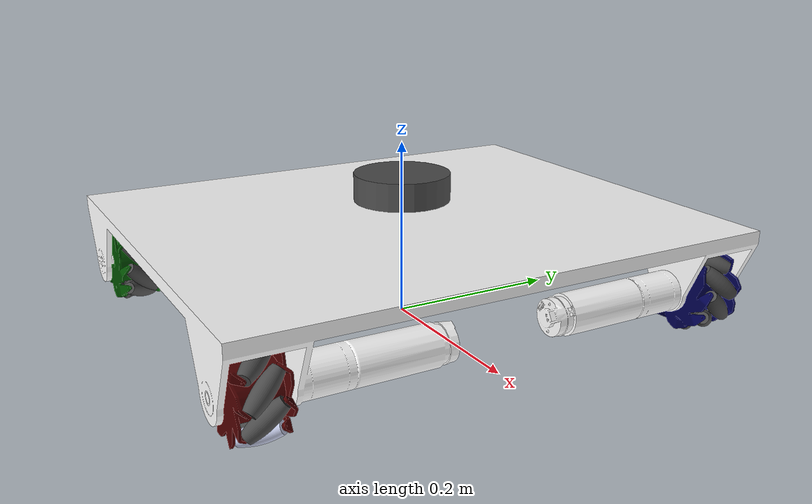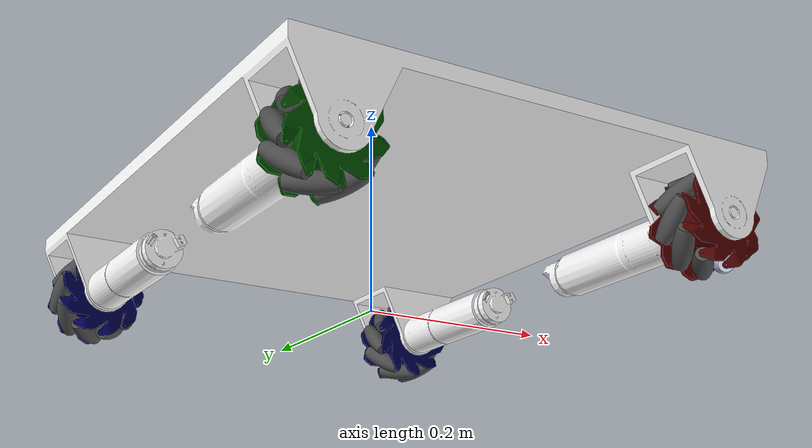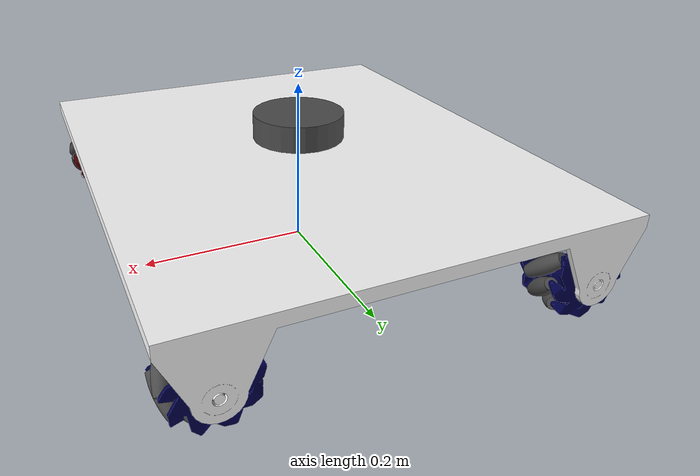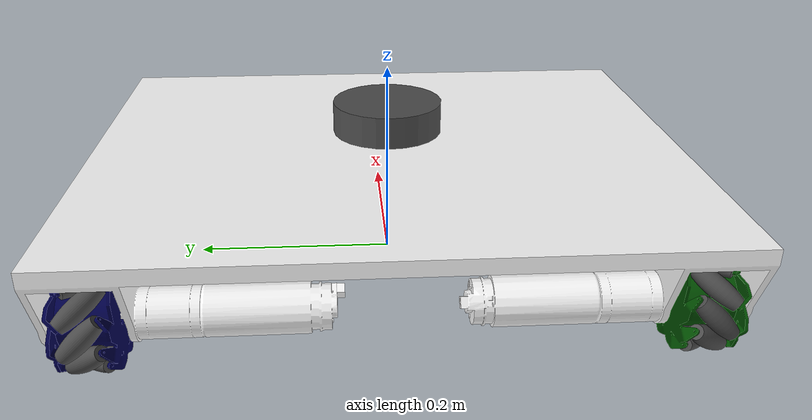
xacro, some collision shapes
<?xml version="1.0"?>
<robot xmlns:xacro="http://www.ros.org/wiki/xacro" name="mecanum">
	<xacro:include filename="$(find mecanum)/urdf/left_rim.urdf.xacro"/>
  <xacro:include filename="$(find mecanum)/urdf/right_rim.urdf.xacro"/>
	<material name="dark">
    	<color rgba="0.3 0.3 0.3 1.0"/>
  </material>

	<link name="base_footprint"/>
	<link name="base_link">
	<inertial>
      <origin
        xyz="3.8106E-17 5.5042E-17 -0.0052377"
        rpy="0 0 0" />
      <mass
        value="4.9166" />
      <inertia
        ixx="0.082486"
        ixy="5.0994E-06"
        ixz="1.5081E-20"
        iyy="0.078984"
        iyz="1.3553E-19"
        izz="0.16031" />
    </inertial>
	<visual>
		<geometry>
			<mesh filename="package://mecanum/meshes/base.STL" scale="1 1 1.2" />

		</geometry>
		<material name="base_material">
			<color rgba="1 1 1 1"/>
		</material>
	</visual>
	<collision>
		<geometry>
			<mesh filename="package://mecanum/meshes/base.STL" scale="1 1 1.2" />

		</geometry>
	</collision>
	</link>

	<joint name="base_joint" type="fixed">
		<parent link="base_footprint" />
		<child link="base_link" />
		<origin xyz="0 0 0.104" rpy="-1.57079632679 0 0"/>
	</joint>

    <!-- xyz="0.2 0.054 -0.195" -->
	<xacro:left_rim_macro
    name="one"
    color="0.3 0 0"
    xyz="0.2 0.056 -0.236"
    rpy="1.57 0 0"
  />
    <!-- xyz="-0.2 0.056 -0.28" -->
  <xacro:right_rim_macro
    name="two"
    color="0 0.3 0"
    xyz="-0.2 0.056 -0.34"
    rpy="-1.57 0 0"
  />
    <!-- xyz="-0.2 0.056 0.196" -->
  <xacro:left_rim_macro
    name="three"
    color="0 0 0.3"
    xyz="-0.2 0.056 0.236"
    rpy="-1.57 0 0"
  />
    <!-- xyz="0.2 0.056 0.28" -->
  <xacro:right_rim_macro
    name="four"
    color="0 0 0.3"
    xyz="0.2 0.056 0.34"
    rpy="1.57 0 0"
  />

	<gazebo reference="base_link">
  	<material>Gazebo/White</material>
  </gazebo>

	<gazebo reference="left_rim_one_link">
    <material>Gazebo/Red</material>
    <mu1>0.2</mu1>
  	<mu2>0.2</mu2>
    <kp>500000.0</kp>
    <kd>10.0</kd>
  </gazebo>

	<gazebo reference="right_rim_two_link">
    <material>Gazebo/Green</material>
    <mu1>0.2</mu1>
  	<mu2>0.2</mu2>
    <kp>500000.0</kp>
    <kd>10.0</kd>
  </gazebo>

	<gazebo reference="left_rim_three_link">
    <material>Gazebo/Blue</material>
    <mu1>0.2</mu1>
  	<mu2>0.2</mu2>
    <kp>500000.0</kp>
    <kd>10.0</kd>
  </gazebo>

  <gazebo reference="right_rim_four_link">
  	<material>Gazebo/Orange</material>
    <mu1>0.2</mu1>
  	<mu2>0.2</mu2>
    <kp>500000.0</kp>
    <kd>10.0</kd>
  </gazebo>

	<joint name="imu_joint" type="fixed">
  	<parent link="base_footprint"/>
  	<child link="imu_link"/>
  	<origin xyz="0 0 0.26325" rpy="0 0 0"/>
  </joint>

  <link name="imu_link"/>

  <joint name="scan_joint" type="fixed">
  	<parent link="base_footprint"/>
  	<child link="base_scan"/>
  	<origin xyz="0 0 0.15" rpy="0 0 0"/>
  </joint>

  <link name="base_scan">
    <visual>
      <origin xyz="0 0 0.0" rpy="0 0 0"/>
      <geometry>
        <mesh filename="package://mecanum/meshes/lds.stl" scale="0.001 0.001 0.001"/>
      </geometry>
      <material name="dark"/>
    </visual>
    <collision>
      <origin xyz="0 0 0" rpy="0 0 0"/>
      <geometry>
        <cylinder length="0.0315" radius="0.055"/>
      </geometry>
    </collision>
    <inertial>
      <mass value="0.114" />
      <origin xyz="0 0 0" />
      <inertia ixx="0.001" ixy="0.0" ixz="0.0"
               iyy="0.001" iyz="0.0"
               izz="0.001" />
    </inertial>
  </link>

  <!-- defining imu and laser in gazebo -->
  <gazebo reference="imu_link">
    <sensor type="imu" name="imu">
      <always_on>true</always_on>
      <visualize>false</visualize>
    </sensor>
    <material>Gazebo/FlatBlack</material>
  </gazebo>

  <gazebo>
    <plugin name="imu_plugin" filename="libgazebo_ros_imu.so">
      <alwaysOn>true</alwaysOn>
      <bodyName>imu_link</bodyName>
      <frameName>imu_link</frameName>
      <topicName>imu</topicName>
      <serviceName>imu_service</serviceName>
      <gaussianNoise>0.0</gaussianNoise>
      <updateRate>0</updateRate>
      <imu>
        <noise>
          <type>gaussian</type>
          <rate>
            <mean>0.0</mean>
            <stddev>2e-4</stddev>
            <bias_mean>0.0000075</bias_mean>
            <bias_stddev>0.0000008</bias_stddev>
          </rate>
          <accel>
            <mean>0.0</mean>
            <stddev>1.7e-2</stddev>
            <bias_mean>0.1</bias_mean>
            <bias_stddev>0.001</bias_stddev>
          </accel>
        </noise>
      </imu>
    </plugin>
  </gazebo>

  <gazebo reference="base_scan">
    <material>Gazebo/FlatBlack</material>
    <sensor type="ray" name="lds_lfcd_sensor">
      <pose>0 0 0 0 0 0</pose>
      <visualize>false</visualize>
      <update_rate>50</update_rate>
      <ray>
        <scan>
          <horizontal>
            <samples>360</samples>
            <resolution>1</resolution>
            <min_angle>0.0</min_angle>
            <max_angle>6.28319</max_angle>
          </horizontal>
        </scan>
        <range>
          <min>0.120</min>
          <max>3.5</max>
          <resolution>0.015</resolution>
        </range>
        <noise>
          <type>gaussian</type>
          <mean>0.0</mean>
          <stddev>0.01</stddev>
        </noise>
      </ray>
      <plugin name="gazebo_ros_lds_lfcd_controller" filename="libgazebo_ros_laser.so">
        <topicName>scan</topicName>
        <frameName>base_scan</frameName>
      </plugin>
    </sensor>
  </gazebo>

  <gazebo>
	  <plugin name="gazebo_ros_control" filename="libgazebo_ros_control.so">
	    <robotNamespace>/mecanum</robotNamespace>
	  </plugin>
	</gazebo>

</robot>

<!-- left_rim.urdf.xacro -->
<robot xmlns:xacro="http://www.ros.org/wiki/xacro">

<xacro:macro
	name="left_rim_macro"
	params="name color xyz rpy">

		<link name="left_rim_${name}_link">
			<inertial>
				<origin xyz="0 0 0"/>
				<mass value="0.12455"/>
				<inertia
                    ixx="4.2965e-05"
                    ixy="-1.5099e-09"
                    ixz="-1.9078e-10"
                    iyy="4.2966e-05"
                    iyz="2.149e-10"
                    izz="7.0188e-05" />
			</inertial>
			<visual>
				<geometry>
					<mesh filename="package://mecanum/meshes/leftwheel.STL" scale="1 1 1"/>
				</geometry>
				<material name="left_rim_${name}_material">
					<color rgba="${color} 1"/>
				</material>
			</visual>
			<collision>
				<geometry>
					<mesh filename="package://mecanum/meshes/leftwheel.STL" scale="1 1 1"/>
				</geometry>
			</collision>
		</link>

		<joint
			name="left_rim_${name}_joint"
			type="continuous">
			<parent link="base_link" />
			<child link="left_rim_${name}_link" />
			<axis xyz="0 1 0"/>
			<origin xyz="${xyz}" rpy="${rpy}"/>
      <limit effort="8" velocity="10"/>
		</joint>

	 <link
    name="${name}_s1">
    <inertial>
      <origin
        xyz="-4.8572e-17 0.018666 1.2143e-16"
        rpy="0 0 0" />
      <mass
        value="0.010529" />
      <inertia
        ixx="1.7311e-06"
        ixy="-2.1176e-22"
        ixz="1.5882e-22"
        iyy="4.3447e-07"
        iyz="-2.3161e-22"
        izz="1.7311e-06" />
    </inertial>
    <visual>
      <origin
        xyz="0 0 0"
        rpy="0 0 0" />
      <geometry>
        <mesh
          filename="package://mecanum/meshes/left/s1.STL" />
      </geometry>
      <material
        name="left_rim_${name}_m1">
        <color
          rgba="0.29804 0.29804 0.29804 1" />
      </material>
    </visual>
    <collision>
      <origin
        xyz="0 0 0"
        rpy="0 0 0" />
      <geometry>
        <mesh
          filename="package://mecanum/meshes/left/s1.STL" />
      </geometry>
    </collision>
  </link>
  <joint
    name="${name}_joint_s1"
    type="continuous">
    <origin
      xyz="0.0074915 -0.013262 -0.040211"
      rpy="0.1144 -0.44796 2.3118" />
    <parent
      link="left_rim_${name}_link" />
    <child
      link="${name}_s1" />
    <axis
      xyz="0 1 0" />
  </joint>
  <link
    name="${name}_s2">
    <inertial>
      <origin
        xyz="-2.0817e-17 0.018666 6.9389e-18"
        rpy="0 0 0" />
      <mass
        value="0.010529" />
      <inertia
        ixx="1.7311e-06"
        ixy="-9.2644e-23"
        ixz="1.0588e-22"
        iyy="4.3447e-07"
        iyz="-2.2582e-22"
        izz="1.7311e-06" />
    </inertial>
    <visual>
      <origin
        xyz="0 0 0"
        rpy="0 0 0" />
      <geometry>
        <mesh
          filename="package://mecanum/meshes/left/s2.STL" />
      </geometry>
      <material
        name="left_rim_${name}_m2">
        <color
          rgba="0.29804 0.29804 0.29804 1" />
      </material>
    </visual>
    <collision>
      <origin
        xyz="0 0 0"
        rpy="0 0 0" />
      <geometry>
        <mesh
          filename="package://mecanum/meshes/left/s2.STL" />
      </geometry>
    </collision>
  </link>
  <joint
    name="${name}_joint_s2"
    type="continuous">
    <origin
      xyz="-0.020148 -0.013203 -0.035574"
      rpy="2.453 0.58859 -1.015" />
    <parent
      link="left_rim_${name}_link" />
    <child
      link="${name}_s2" />
    <axis
      xyz="0 1 0" />
  </joint>
  <link
    name="${name}_s3">
    <inertial>
      <origin
        xyz="-1.3878e-17 0.018666 -2.0817e-17"
        rpy="0 0 0" />
      <mass
        value="0.010529" />
      <inertia
        ixx="1.7311e-06"
        ixy="2.9779e-22"
        ixz="-7.9409e-23"
        iyy="4.3447e-07"
        iyz="1.8529e-22"
        izz="1.7311e-06" />
    </inertial>
    <visual>
      <origin
        xyz="0 0 0"
        rpy="0 0 0" />
      <geometry>
        <mesh
          filename="package://mecanum/meshes/left/s3.STL" />
      </geometry>
      <material
        name="left_rim_${name}_m3">
        <color
          rgba="0.29804 0.29804 0.29804 1" />
      </material>
    </visual>
    <collision>
      <origin
        xyz="0 0 0"
        rpy="0 0 0" />
      <geometry>
        <mesh
          filename="package://mecanum/meshes/left/s3.STL" />
      </geometry>
    </collision>
  </link>
  <joint
    name="${name}_joint_s3"
    type="continuous">
    <origin
      xyz="-0.038299 -0.013262 -0.01436"
      rpy="0.79979 -0.1704 2.9403" />
    <parent
      link="left_rim_${name}_link" />
    <child
      link="${name}_s3" />
    <axis
      xyz="0 1 0" />
  </joint>
  <link
    name="${name}_s4">
    <inertial>
      <origin
        xyz="-1.3878e-17 0.018666 3.4694e-18"
        rpy="0 0 0" />
      <mass
        value="0.010529" />
      <inertia
        ixx="1.7311e-06"
        ixy="2.1507e-22"
        ixz="4.3013e-23"
        iyy="4.3447e-07"
        iyz="-1.1911e-22"
        izz="1.7311e-06" />
    </inertial>
    <visual>
      <origin
        xyz="0 0 0"
        rpy="0 0 0" />
      <geometry>
        <mesh
          filename="package://mecanum/meshes/left/s4.STL" />
      </geometry>
      <material
        name="left_rim_${name}_m4">
        <color
          rgba="0.29804 0.29804 0.29804 1" />
      </material>
    </visual>
    <collision>
      <origin
        xyz="0 0 0"
        rpy="0 0 0" />
      <geometry>
        <mesh
          filename="package://mecanum/meshes/left/s4.STL" />
      </geometry>
    </collision>
  </link>
  <joint
    name="${name}_joint_s4"
    type="continuous">
    <origin
      xyz="-0.03857 -0.013262 0.013618"
      rpy="2.3801 0.63764 0.039325" />
    <parent
      link="left_rim_${name}_link" />
    <child
      link="${name}_s4" />
    <axis
      xyz="0 1 0" />
  </joint>
  <link
    name="${name}_s5">
    <inertial>
      <origin
        xyz="0 0.018666 8.6736e-18"
        rpy="0 0 0" />
      <mass
        value="0.010529" />
      <inertia
        ixx="1.7311e-06"
        ixy="3.9705e-23"
        ixz="-1.8529e-22"
        iyy="4.3447e-07"
        iyz="2.1176e-22"
        izz="1.7311e-06" />
    </inertial>
    <visual>
      <origin
        xyz="0 0 0"
        rpy="0 0 0" />
      <geometry>
        <mesh
          filename="package://mecanum/meshes/left/s5.STL" />
      </geometry>
      <material
        name="left_rim_${name}_m5">
        <color
          rgba="0.29804 0.29804 0.29804 1" />
      </material>
    </visual>
    <collision>
      <origin
        xyz="0 0 0"
        rpy="0 0 0" />
      <geometry>
        <mesh
          filename="package://mecanum/meshes/left/s5.STL" />
      </geometry>
    </collision>
  </link>
  <joint
    name="${name}_joint_s5"
    type="continuous">
    <origin
      xyz="-0.020793 -0.013262 0.035224"
      rpy="2.9474 0.73912 0.64333" />
    <parent
      link="left_rim_${name}_link" />
    <child
      link="${name}_s5" />
    <axis
      xyz="0 1 0" />
  </joint>
  <link
    name="${name}_s6">
    <inertial>
      <origin
        xyz="-1.0408e-17 0.018666 -6.9389e-18"
        rpy="0 0 0" />
      <mass
        value="0.010529" />
      <inertia
        ixx="1.7311e-06"
        ixy="2.3823e-22"
        ixz="0"
        iyy="4.3447e-07"
        iyz="4.4337e-22"
        izz="1.7311e-06" />
    </inertial>
    <visual>
      <origin
        xyz="0 0 0"
        rpy="0 0 0" />
      <geometry>
        <mesh
          filename="package://mecanum/meshes/left/s6.STL" />
      </geometry>
      <material
        name="left_rim_${name}_m6">
        <color
          rgba="0.29804 0.29804 0.29804 1" />
      </material>
    </visual>
    <collision>
      <origin
        xyz="0 0 0"
        rpy="0 0 0" />
      <geometry>
        <mesh
          filename="package://mecanum/meshes/left/s6.STL" />
      </geometry>
    </collision>
  </link>
  <joint
    name="${name}_joint_s6"
    type="continuous">
    <origin
      xyz="0.0067661 -0.013203 0.04032"
      rpy="-2.7962 -0.12334 0.67738" />
    <parent
      link="left_rim_${name}_link" />
    <child
      link="${name}_s6" />
    <axis
      xyz="0 1 0" />
  </joint>
  <link
    name="${name}_s7">
    <inertial>
      <origin
        xyz="0 0.018666 1.7347e-17"
        rpy="0 0 0" />
      <mass
        value="0.010529" />
      <inertia
        ixx="1.7311e-06"
        ixy="1.7205e-22"
        ixz="2.647e-23"
        iyy="4.3447e-07"
        iyz="-4.1028e-22"
        izz="1.7311e-06" />
    </inertial>
    <visual>
      <origin
        xyz="0 0 0"
        rpy="0 0 0" />
      <geometry>
        <mesh
          filename="package://mecanum/meshes/left/s7.STL" />
      </geometry>
      <material
        name="left_rim_${name}_m7">
        <color
          rgba="0.29804 0.29804 0.29804 1" />
      </material>
    </visual>
    <collision>
      <origin
        xyz="0 0 0"
        rpy="0 0 0" />
      <geometry>
        <mesh
          filename="package://mecanum/meshes/left/s7.STL" />
      </geometry>
    </collision>
  </link>
  <joint
    name="${name}_joint_s7"
    type="continuous">
    <origin
      xyz="0.0311 -0.013203 0.026538"
      rpy="-1.2178 0.79472 2.4005" />
    <parent
      link="left_rim_${name}_link" />
    <child
      link="${name}_s7" />
    <axis
      xyz="0 1 0" />
  </joint>
  <link
    name="${name}_s8">
    <inertial>
      <origin
        xyz="0 0.018666 -5.2042e-18"
        rpy="0 0 0" />
      <mass
        value="0.010529" />
      <inertia
        ixx="1.7311e-06"
        ixy="-1.1084e-22"
        ixz="5.9557e-23"
        iyy="4.3447e-07"
        iyz="5.691e-22"
        izz="1.7311e-06" />
    </inertial>
    <visual>
      <origin
        xyz="0 0 0"
        rpy="0 0 0" />
      <geometry>
        <mesh
          filename="package://mecanum/meshes/left/s8.STL" />
      </geometry>
      <material
        name="left_rim_${name}_m8">
        <color
          rgba="0.29804 0.29804 0.29804 1" />
      </material>
    </visual>
    <collision>
      <origin
        xyz="0 0 0"
        rpy="0 0 0" />
      <geometry>
        <mesh
          filename="package://mecanum/meshes/left/s8.STL" />
      </geometry>
    </collision>
  </link>
  <joint
    name="${name}_joint_s8"
    type="continuous">
    <origin
      xyz="0.040882 -0.013203 0.00033813"
      rpy="-2.3759 0.25254 -0.069478" />
    <parent
      link="left_rim_${name}_link" />
    <child
      link="${name}_s8" />
    <axis
      xyz="0 1 0" />
  </joint>
  <link
    name="${name}_s9">
    <inertial>
      <origin
        xyz="1.0265e-07 9.1526e-08 0.026465"
        rpy="0 0 0" />
      <mass
        value="0.12455" />
      <inertia
        ixx="4.2965e-05"
        ixy="-1.51e-09"
        ixz="-1.9104e-10"
        iyy="4.2966e-05"
        iyz="2.1467e-10"
        izz="7.0188e-05" />
    </inertial>
    <visual>
      <origin
        xyz="0 0 0"
        rpy="0 0 0" />
      <geometry>
        <mesh
          filename="package://mecanum/meshes/left/s9.STL" />
      </geometry>
      <material
        name="left_rim_${name}_m9">
        <color
          rgba="0.79216 0.81961 0.93333 1" />
      </material>
    </visual>
    <collision>
      <origin
        xyz="0 0 0"
        rpy="0 0 0" />
      <geometry>
        <mesh
          filename="package://mecanum/meshes/left/s9.STL" />
      </geometry>
    </collision>
  </link>
  <joint
    name="${name}_joint_s9"
    type="continuous">
    <origin
      xyz="0.031535 -0.013203 -0.02602"
      rpy="-0.51314 -0.71444 2.7899" />
    <parent
      link="left_rim_${name}_link" />
    <child
      link="${name}_s9" />
    <axis
      xyz="0 1 0" />
  </joint>

	<gazebo reference="${name}_s1">
    <material>Gazebo/Black</material>
    <mu1>1</mu1>
    <mu2>1</mu2>
    <kp>10000.0</kp>
    <kd>1000000.0</kd>
</gazebo>

<gazebo reference="${name}_s2">
    <material>Gazebo/Black</material>
    <mu1>1</mu1>
    <mu2>1</mu2>
    <kp>10000.0</kp>
    <kd>1000000.0</kd>
</gazebo>

<gazebo reference="${name}_s3">
    <material>Gazebo/Black</material>
    <mu1>1</mu1>
    <mu2>1</mu2>
    <kp>10000.0</kp>
    <kd>1000000.0</kd>
</gazebo>

<gazebo reference="${name}_s4">
    <material>Gazebo/Black</material>
    <mu1>1</mu1>
    <mu2>1</mu2>
    <kp>10000.0</kp>
    <kd>1000000.0</kd>
</gazebo>

<gazebo reference="${name}_s5">
    <material>Gazebo/Black</material>
    <mu1>1</mu1>
    <mu2>1</mu2>
    <kp>10000.0</kp>
    <kd>1000000.0</kd>
</gazebo>

<gazebo reference="${name}_s6">
    <material>Gazebo/Black</material>
    <mu1>1</mu1>
    <mu2>1</mu2>
    <kp>10000.0</kp>
    <kd>1000000.0</kd>
</gazebo>

<gazebo reference="${name}_s7">
    <material>Gazebo/Black</material>
    <mu1>1</mu1>
    <mu2>1</mu2>
    <kp>10000.0</kp>
    <kd>1000000.0</kd>
</gazebo>

<gazebo reference="${name}_s8">
    <material>Gazebo/Black</material>
    <mu1>1</mu1>
    <mu2>1</mu2>
    <kp>10000.0</kp>
    <kd>1000000.0</kd>
</gazebo>

<gazebo reference="${name}_s9">
    <material>Gazebo/Black</material>
    <mu1>1</mu1>
    <mu2>1</mu2>
    <kp>10000.0</kp>
    <kd>1000000.0</kd>
</gazebo>

  <transmission name="left_rim_${name}_transmission">
		<type>transmission_interface/SimpleTransmission</type>
		<joint name="left_rim_${name}_joint">
			<hardwareInterface>hardware_interface/VelocityJointInterface</hardwareInterface>
		</joint>
		<actuator name="left_rim_${name}_motor">
			<hardwareInterface>hardware_interface/VelocityJointInterface</hardwareInterface>
			<mechanicalReduction>1</mechanicalReduction>
		</actuator>
	</transmission>

	</xacro:macro>

</robot>

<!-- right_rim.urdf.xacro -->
<robot xmlns:xacro="http://www.ros.org/wiki/xacro">

<xacro:macro
	name="right_rim_macro"
	params="name color xyz rpy">

		<link name="right_rim_${name}_link">
			<inertial>
    		  <origin
    		    xyz="1.0506E-07 9.3419E-08 0.078465"
    		    rpy="0 0 0" />
    		  <mass
    		    value="0.12455" />
    		  <inertia
    		    ixx="4.2965E-05"
    		    ixy="-1.5215E-09"
    		    ixz="1.9309E-10"
    		    iyy="4.2966E-05"
    		    iyz="-2.1715E-10"
    		    izz="7.0188E-05" />
    		</inertial>
			<visual>
				<geometry>
					<mesh filename="package://mecanum/meshes/rightwheel.STL" scale="1 1 1"/>
				</geometry>
				<material name="right_rim_${name}_material">
					<color rgba="${color} 1"/>
				</material>
			</visual>
			<collision>
				<geometry>
					<mesh filename="package://mecanum/meshes/rightwheel.STL" scale="1 1 1"/>
				</geometry>
			</collision>
		</link>

		<joint
			name="right_rim_${name}_joint"
			type="continuous">
			<parent link="base_link" />
			<child link="right_rim_${name}_link" />
			<axis xyz="0 1 0"/>
			<origin xyz="${xyz}" rpy="${rpy}"/>
      <limit effort="8" velocity="10"/>
		</joint>

		<link
    name="${name}_s2">
    <inertial>
      <origin
        xyz="-9.7145E-17 -0.00099294 -2.7756E-17"
        rpy="0 0 0" />
      <mass
        value="0.010529" />
      <inertia
        ixx="1.7311E-06"
        ixy="-1.9852E-22"
        ixz="2.647E-23"
        iyy="4.3447E-07"
        iyz="-3.2425E-22"
        izz="1.7311E-06" />
    </inertial>
    <visual>
      <origin
        xyz="0 0 0"
        rpy="0 0 0" />
      <geometry>
        <mesh
          filename="package://mecanum/meshes/right/s2.STL" />
      </geometry>
      <material
        name="right_rim_${name}_m2">
        <color
          rgba="0.29804 0.29804 0.29804 1" />
      </material>
    </visual>
    <collision>
      <origin
        xyz="0 0 0"
        rpy="0 0 0" />
      <geometry>
        <mesh
          filename="package://mecanum/meshes/right/s2.STL" />
      </geometry>
    </collision>
  </link>
  <joint
    name="${name}_joint_s2"
    type="continuous">
    <origin
      xyz="-0.0071115 -0.077699 0.038041"
      rpy="2.9884 -0.3648 2.4216" />
    <parent
      link="right_rim_${name}_link" />
    <child
      link="${name}_s2" />
    <axis
      xyz="0 1 0" />
  </joint>
  <link
    name="${name}_s3">
    <inertial>
      <origin
        xyz="2.08166817117217E-17 0.00776513896531114 6.93889390390723E-18"
        rpy="0 0 0" />
      <mass
        value="0.0105294219872446" />
      <inertia
        ixx="1.73108849475212E-06"
        ixy="-4.7811039405565E-22"
        ixz="2.18375681713999E-22"
        iyy="4.34469260623841E-07"
        iyz="7.94093388050907E-23"
        izz="1.73108849475213E-06" />
    </inertial>
    <visual>
      <origin
        xyz="0 0 0"
        rpy="0 0 0" />
      <geometry>
        <mesh
          filename="package://mecanum/meshes/right/s3.STL" />
      </geometry>
      <material
        name="right_rim_${name}_m3">
        <color
          rgba="0.298039215686275 0.298039215686275 0.298039215686275 1" />
      </material>
    </visual>
    <collision>
      <origin
        xyz="0 0 0"
        rpy="0 0 0" />
      <geometry>
        <mesh
          filename="package://mecanum/meshes/right/s3.STL" />
      </geometry>
    </collision>
  </link>
  <joint
    name="${name}_joint_s3"
    type="continuous">
    <origin
      xyz="0.023218 -0.072911 0.031437"
      rpy="2.4323 -1.0288 -0.087593" />
    <parent
      link="right_rim_${name}_link" />
    <child
      link="${name}_s3" />
    <axis
      xyz="0 1 0" />
  </joint>
  <link
    name="${name}_s4">
    <inertial>
      <origin
        xyz="6.9389E-18 0.028754 -6.9389E-18"
        rpy="0 0 0" />
      <mass
        value="0.010529" />
      <inertia
        ixx="1.7311E-06"
        ixy="2.7793E-22"
        ixz="0"
        iyy="4.3447E-07"
        iyz="7.2792E-22"
        izz="1.7311E-06" />
    </inertial>
    <visual>
      <origin
        xyz="0 0 0"
        rpy="0 0 0" />
      <geometry>
        <mesh
          filename="package://mecanum/meshes/right/s4.STL" />
      </geometry>
      <material
        name="right_rim_${name}_m4">
        <color
          rgba="0.29804 0.29804 0.29804 1" />
      </material>
    </visual>
    <collision>
      <origin
        xyz="0 0 0"
        rpy="0 0 0" />
      <geometry>
        <mesh
          filename="package://mecanum/meshes/right/s4.STL" />
      </geometry>
    </collision>
  </link>
  <joint
    name="${name}_joint_s4"
    type="continuous">
    <origin
      xyz="0.043487 -0.05813 -0.0046936"
      rpy="2.4229 -0.057989 -0.30256" />
    <parent
      link="right_rim_${name}_link" />
    <child
      link="${name}_s4" />
    <axis
      xyz="0 1 0" />
  </joint>
  <link
    name="${name}_s5">
    <inertial>
      <origin
        xyz="0 0.039217 1.3878E-17"
        rpy="0 0 0" />
      <mass
        value="0.010529" />
      <inertia
        ixx="1.7311E-06"
        ixy="6.6174E-24"
        ixz="0"
        iyy="4.3447E-07"
        iyz="3.8381E-22"
        izz="1.7311E-06" />
    </inertial>
    <visual>
      <origin
        xyz="0 0 0"
        rpy="0 0 0" />
      <geometry>
        <mesh
          filename="package://mecanum/meshes/right/s5.STL" />
      </geometry>
      <material
        name="right_rim_${name}_m5">
        <color
          rgba="0.29804 0.29804 0.29804 1" />
      </material>
    </visual>
    <collision>
      <origin
        xyz="0 0 0"
        rpy="0 0 0" />
      <geometry>
        <mesh
          filename="package://mecanum/meshes/right/s5.STL" />
      </geometry>
    </collision>
  </link>
  <joint
    name="${name}_joint_s5"
    type="continuous">
    <origin
      xyz="0.027965 -0.050731 -0.03857"
      rpy="2.2118 0.57852 -0.32722" />
    <parent
      link="right_rim_${name}_link" />
    <child
      link="${name}_s5" />
    <axis
      xyz="0 1 0" />
  </joint>
  <link
    name="${name}_s6">
    <inertial>
      <origin
        xyz="0 -0.038953 1.0408E-17"
        rpy="0 0 0" />
      <mass
        value="0.010529" />
      <inertia
        ixx="1.7311E-06"
        ixy="1.9852E-22"
        ixz="2.647E-23"
        iyy="4.3447E-07"
        iyz="7.9409E-23"
        izz="1.7311E-06" />
    </inertial>
    <visual>
      <origin
        xyz="0 0 0"
        rpy="0 0 0" />
      <geometry>
        <mesh
          filename="package://mecanum/meshes/right/s6.STL" />
      </geometry>
      <material
        name="right_rim_${name}_m6">
        <color
          rgba="0.29804 0.29804 0.29804 1" />
      </material>
    </visual>
    <collision>
      <origin
        xyz="0 0 0"
        rpy="0 0 0" />
      <geometry>
        <mesh
          filename="package://mecanum/meshes/right/s6.STL" />
      </geometry>
    </collision>
  </link>
  <joint
    name="${name}_joint_s6"
    type="continuous">
    <origin
      xyz="-0.0032111 -0.050918 -0.047424"
      rpy="-1.9973 1.1512 -1.3272" />
    <parent
      link="right_rim_${name}_link" />
    <child
      link="${name}_s6" />
    <axis
      xyz="0 1 0" />
  </joint>
  <link
    name="${name}_s7">
    <inertial>
      <origin
        xyz="1.38777878078145E-17 -0.0328477455268054 -2.77555756156289E-17"
        rpy="0 0 0" />
      <mass
        value="0.0105294219872446" />
      <inertia
        ixx="1.73108849475224E-06"
        ixy="4.63221143029695E-22"
        ixz="-2.64697796016969E-23"
        iyy="4.34469260624082E-07"
        iyz="-6.61744490042422E-23"
        izz="1.73108849475224E-06" />
    </inertial>
    <visual>
      <origin
        xyz="0 0 0"
        rpy="0 0 0" />
      <geometry>
        <mesh
          filename="package://mecanum/meshes/right/s7.STL" />
      </geometry>
      <material
        name="right_rim_${name}_m7">
        <color
          rgba="0.298039215686275 0.298039215686275 0.298039215686275 1" />
      </material>
    </visual>
    <collision>
      <origin
        xyz="0 0 0"
        rpy="0 0 0" />
      <geometry>
        <mesh
          filename="package://mecanum/meshes/right/s7.STL" />
      </geometry>
    </collision>
  </link>
  <joint
    name="${name}_joint_s7"
    type="continuous">
    <origin
      xyz="-0.028672 -0.055235 -0.034893"
      rpy="0.47057 1.3419 1.24" />
    <parent
      link="right_rim_${name}_link" />
    <child
      link="${name}_s7" />
    <axis
      xyz="0 1 0" />
  </joint>
  <link
    name="${name}_s8">
    <inertial>
      <origin
        xyz="-1.0408E-17 -0.017391 2.7756E-17"
        rpy="0 0 0" />
      <mass
        value="0.010529" />
      <inertia
        ixx="1.7311E-06"
        ixy="4.0366E-22"
        ixz="2.647E-23"
        iyy="4.3447E-07"
        iyz="1.1911E-22"
        izz="1.7311E-06" />
    </inertial>
    <visual>
      <origin
        xyz="0 0 0"
        rpy="0 0 0" />
      <geometry>
        <mesh
          filename="package://mecanum/meshes/right/s8.STL" />
      </geometry>
      <material
        name="right_rim_${name}_m8">
        <color
          rgba="0.29804 0.29804 0.29804 1" />
      </material>
    </visual>
    <collision>
      <origin
        xyz="0 0 0"
        rpy="0 0 0" />
      <geometry>
        <mesh
          filename="package://mecanum/meshes/right/s8.STL" />
      </geometry>
    </collision>
  </link>
  <joint
    name="${name}_joint_s8"
    type="continuous">
    <origin
      xyz="-0.037132 -0.066164 -0.016468"
      rpy="1.3656 -1.0006 -0.74202" />
    <parent
      link="right_rim_${name}_link" />
    <child
      link="${name}_s8" />
    <axis
      xyz="0 1 0" />
  </joint>
  <link
    name="${name}_s9">
    <inertial>
      <origin
        xyz="0 -0.00029534 -1.3878E-17"
        rpy="0 0 0" />
      <mass
        value="0.010529" />
      <inertia
        ixx="1.7311E-06"
        ixy="7.9409E-23"
        ixz="1.3235E-22"
        iyy="4.3447E-07"
        iyz="2.9117E-22"
        izz="1.7311E-06" />
    </inertial>
    <visual>
      <origin
        xyz="0 0 0"
        rpy="0 0 0" />
      <geometry>
        <mesh
          filename="package://mecanum/meshes/right/s9.STL" />
      </geometry>
      <material
        name="right_rim_${name}_m9">
        <color
          rgba="0.29804 0.29804 0.29804 1" />
      </material>
    </visual>
    <collision>
      <origin
        xyz="0 0 0"
        rpy="0 0 0" />
      <geometry>
        <mesh
          filename="package://mecanum/meshes/right/s9.STL" />
      </geometry>
    </collision>
  </link>
  <joint
    name="${name}_joint_s9"
    type="continuous">
    <origin
      xyz="-0.038685 -0.078253 -0.00083091"
      rpy="2.1934 -0.51538 -2.5115" />
    <parent
      link="right_rim_${name}_link" />
    <child
      link="${name}_s9" />
    <axis
      xyz="0 1 0" />
  </joint>
  <link
    name="${name}_s10">
    <inertial>
      <origin
        xyz="3.4694E-17 -0.0054517 -3.4694E-17"
        rpy="0 0 0" />
      <mass
        value="0.010529" />
      <inertia
        ixx="1.7311E-06"
        ixy="2.3161E-22"
        ixz="-1.3235E-23"
        iyy="4.3447E-07"
        iyz="6.088E-22"
        izz="1.7311E-06" />
    </inertial>
    <visual>
      <origin
        xyz="0 0 0"
        rpy="0 0 0" />
      <geometry>
        <mesh
          filename="package://mecanum/meshes/right/s10.STL" />
      </geometry>
      <material
        name="right_rim_${name}_m10">
        <color
          rgba="0.29804 0.29804 0.29804 1" />
      </material>
    </visual>
    <collision>
      <origin
        xyz="0 0 0"
        rpy="0 0 0" />
      <geometry>
        <mesh
          filename="package://mecanum/meshes/right/s10.STL" />
      </geometry>
    </collision>
  </link>
  <joint
    name="${name}_joint_s10"
    type="continuous">
    <origin
      xyz="-0.027943 -0.074547 0.027042"
      rpy="0.98708 0.84407 0.29152" />
    <parent
      link="right_rim_${name}_link" />
    <child
      link="${name}_s10" />
    <axis
      xyz="0 -1 0" />
  </joint>

  <gazebo reference="${name}_s2">
    <material>Gazebo/Black</material>
    <mu1>1</mu1>
    <mu2>1</mu2>
    <kp>10000.0</kp>
    <kd>1000000.0</kd>
</gazebo>

<gazebo reference="${name}_s3">
    <material>Gazebo/Black</material>
    <mu1>1</mu1>
    <mu2>1</mu2>
    <kp>10000.0</kp>
    <kd>1000000.0</kd>
</gazebo>

<gazebo reference="${name}_s4">
    <material>Gazebo/Black</material>
    <mu1>1</mu1>
    <mu2>1</mu2>
    <kp>10000.0</kp>
    <kd>1000000.0</kd>
</gazebo>

<gazebo reference="${name}_s5">
    <material>Gazebo/Black</material>
    <mu1>1</mu1>
    <mu2>1</mu2>
    <kp>10000.0</kp>
    <kd>1000000.0</kd>
</gazebo>

<gazebo reference="${name}_s6">
    <material>Gazebo/Black</material>
    <mu1>1</mu1>
    <mu2>1</mu2>
    <kp>10000.0</kp>
    <kd>1000000.0</kd>
</gazebo>

<gazebo reference="${name}_s7">
    <material>Gazebo/Black</material>
    <mu1>1</mu1>
    <mu2>1</mu2>
    <kp>10000.0</kp>
    <kd>1000000.0</kd>
</gazebo>

<gazebo reference="${name}_s8">
    <material>Gazebo/Black</material>
    <mu1>1</mu1>
    <mu2>1</mu2>
    <kp>10000.0</kp>
    <kd>1000000.0</kd>
</gazebo>

<gazebo reference="${name}_s9">
    <material>Gazebo/Black</material>
    <mu1>1</mu1>
    <mu2>1</mu2>
    <kp>10000.0</kp>
    <kd>1000000.0</kd>
</gazebo>

<gazebo reference="${name}_s10">
    <material>Gazebo/Black</material>
    <mu1>1</mu1>
    <mu2>1</mu2>
    <kp>10000.0</kp>
    <kd>1000000.0</kd>
</gazebo>

  <transmission name="right_rim_${name}_transmission">
		<type>transmission_interface/SimpleTransmission</type>
		<joint name="right_rim_${name}_joint">
			<hardwareInterface>hardware_interface/VelocityJointInterface</hardwareInterface>
		</joint>
		<actuator name="right_rim_${name}_motor">
			<hardwareInterface>hardware_interface/VelocityJointInterface</hardwareInterface>
			<mechanicalReduction>1</mechanicalReduction>
		</actuator>
	</transmission>

</xacro:macro>

</robot>
